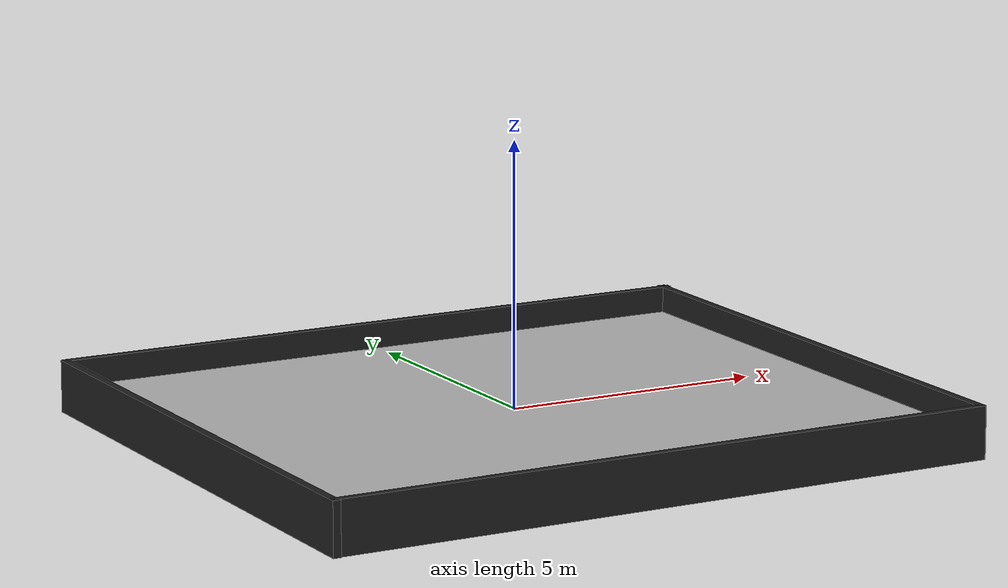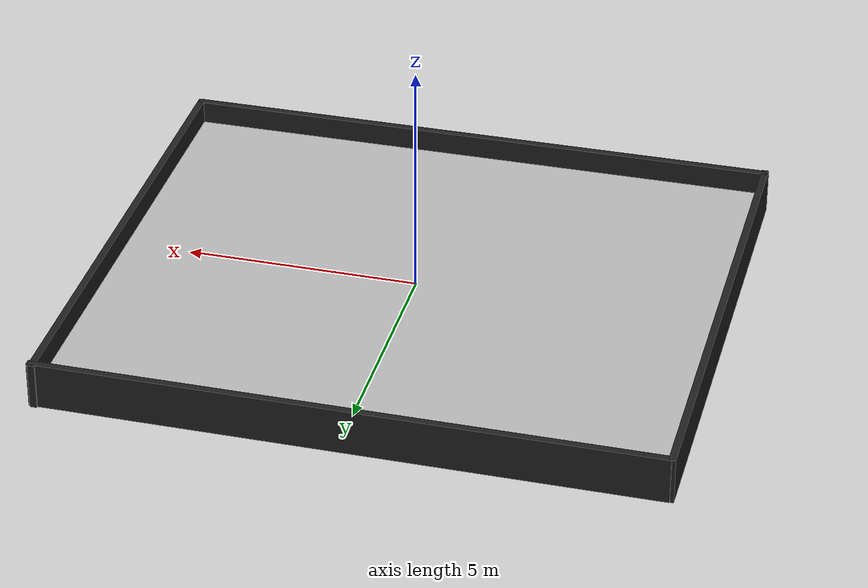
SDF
<sdf version="1.4">
 <world name="default">
  <scene><ambient>0.8 0.8 0.8 1</ambient><background>0.7 0.7 0.7 1</background><shadows>true</shadows></scene>
  <include><uri>model://sun</uri><pose>-2.0 2.0 2.0 0 0 0</pose></include>
  <include><uri>model://sala404_circuito/pisosala</uri><pose>0 0 0 0 0 -1.57</pose></include>
  <include><uri>model://base</uri><pose>0 4.5 0 0 0 0</pose></include>
  <include><uri>model://base</uri><pose>-6 0 0 0 0 0</pose></include>
  <include><uri>model://base</uri><pose>5.5 -3.5 0 0 0 0</pose></include>
  <include><uri>model://base</uri><pose>5.5 3.5 0 0 0 0</pose></include>
  <include><uri>model://base</uri><pose>6 0 0 0 0 0</pose></include>
  <include><uri>model://base</uri><pose>-5.5 3.5 0 0 0 0</pose></include>
  <include><uri>model://base</uri><pose>-3 -3 0 0 0 0</pose></include>
  <include><uri>model://base</uri><pose>0 -4.5 0 0 0 0</pose></include>
  <include><uri>model://base</uri><pose>-4.3 -2 0 0 0 0</pose></include>
  <include><uri>model://sala404_circuito/parede</uri></include>
  <physics type="ode">
   <real_time_update_rate>1000.0</real_time_update_rate>
   <max_step_size>0.001</max_step_size>
   <real_time_factor>1</real_time_factor>
   <ode>
    <solver>
     <type>quick</type>
     <iters>150</iters>
     <precon_iters>0</precon_iters>
     <sor>1.400000</sor>
     <use_dynamic_moi_rescaling>1</use_dynamic_moi_rescaling>
    </solver>
    <constraints>
     <cfm>0.00001</cfm>
     <erp>0.2</erp>
     <contact_max_correcting_vel>2000.000000</contact_max_correcting_vel>
     <contact_surface_layer>0.01000</contact_surface_layer>
    </constraints>
   </ode>
  </physics>
 </world>
</sdf>

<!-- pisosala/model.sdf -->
<sdf version="1.6">
  <model name="pisosala_forca">
    <static>true</static>
    <link name="course_link">
      <collision name="course_collision">
        <geometry>
          <plane>
            <normal>0 0 1</normal>
            <size>10 13</size>
          </plane>
        </geometry>
        <surface>
          <friction>
            <ode>
              <mu>100</mu>
              <mu2>50</mu2>
            </ode>
          </friction>
        </surface>
      </collision>
      <visual name="course_visual">
        <cast_shadows>false</cast_shadows>
        <geometry>
          <mesh>
            <uri>model://forca/pisosala/materials/scripts/piso.dae</uri>
            <scale>1 1 1</scale>
          </mesh>
        </geometry>
      </visual>
    </link>
  </model>
</sdf>

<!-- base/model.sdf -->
<sdf version='1.6'>
  <model name='base'>
    <link name='link_0'>
      <inertial>
        <mass>0.03</mass>
        <inertia>
          <ixx>0.004375</ixx>
          <ixy>0</ixy>
          <ixz>0</ixz>
          <iyy>0.004375</iyy>
          <iyz>0</iyz>
          <izz>0.00375</izz>
        </inertia>
        <pose frame=''>0 0 0 0 -0 0</pose>
      </inertial>
      <pose frame=''>0.003805 -0.001087 -0.087331 0 -0 0</pose>
      <gravity>1</gravity>
      <self_collide>0</self_collide>
      <kinematic>0</kinematic>
      <enable_wind>0</enable_wind>
      <visual name='visual'>
        <pose frame=''>0 0 0 0 -0 0</pose>
        <geometry>
          <cylinder>
            <radius>0.1</radius>
            <length>0.1</length>
          </cylinder>
        </geometry>
      </visual>
      <collision name='collision'>
        <laser_retro>0</laser_retro>
        <max_contacts>10</max_contacts>
        <pose frame=''>0 0 0 0 -0 0</pose>
        <geometry>
          <cylinder>
            <radius>0.1</radius>
            <length>0.1</length>
          </cylinder>
        </geometry>
        <surface>
          <friction>
            <ode>
              <mu>1</mu>
              <mu2>1</mu2>
              <fdir1>0 0 0</fdir1>
              <slip1>0</slip1>
              <slip2>0</slip2>
            </ode>
            <torsional>
              <coefficient>1</coefficient>
              <patch_radius>0</patch_radius>
              <surface_radius>0</surface_radius>
              <use_patch_radius>1</use_patch_radius>
              <ode>
                <slip>0</slip>
              </ode>
            </torsional>
          </friction>
          <bounce>
            <restitution_coefficient>0</restitution_coefficient>
            <threshold>1e+06</threshold>
          </bounce>
          <contact>
            <collide_without_contact>0</collide_without_contact>
            <collide_without_contact_bitmask>1</collide_without_contact_bitmask>
            <collide_bitmask>1</collide_bitmask>
            <ode>
              <soft_cfm>0</soft_cfm>
              <soft_erp>0.2</soft_erp>
              <kp>1e+13</kp>
              <kd>1</kd>
              <max_vel>0.01</max_vel>
              <min_depth>0</min_depth>
            </ode>
            <bullet>
              <split_impulse>1</split_impulse>
              <split_impulse_penetration_threshold>-0.01</split_impulse_penetration_threshold>
              <soft_cfm>0</soft_cfm>
              <soft_erp>0.2</soft_erp>
              <kp>1e+13</kp>
              <kd>1</kd>
            </bullet>
          </contact>
        </surface>
      </collision>
    </link>

</model>

</sdf>

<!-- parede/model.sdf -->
<sdf version='1.6'>
  <model name='parede'>
    <link name='Wall_0'>
      <pose frame=''>-0.004951 -5.56026 0 0 -0 0</pose>
      <self_collide>0</self_collide>
      <enable_wind>0</enable_wind>
      <kinematic>0</kinematic>
      <inertial>
        <inertia>
          <ixx>0</ixx>
          <ixy>0</ixy>
          <ixz>0</ixz>
          <iyy>0</iyy>
          <iyz>0</iyz>
          <izz>0</izz>
        </inertia>
        <mass>0</mass>
        <pose frame=''>0 0 0 0 -0 0</pose>
      </inertial>
      <gravity>1</gravity>
      <visual name='Wall_0_Visual'>
        <pose frame=''>0 0 0 0 -0 0</pose>
        <geometry>
          <box>
            <size>13.1161 0.15 1.0</size>
          </box>
        </geometry>
        <material>
          <script>
            <uri>file://media/materials/scripts/gazebo.material</uri>
            <name>Gazebo/Black</name>
          </script>
          <ambient>0 0 0 1</ambient>
          <shader type='vertex'>
            <normal_map>__default__</normal_map>
          </shader>
          <diffuse>0 0 0 1</diffuse>
          <specular>0 0 0 1</specular>
          <emissive>0 0 0 1</emissive>
        </material>
        <meta>
          <layer>0</layer>
        </meta>
        <transparency>0</transparency>
        <cast_shadows>1</cast_shadows>
      </visual>
      <collision name='Wall_0_Collision'>
        <laser_retro>0</laser_retro>
        <max_contacts>10</max_contacts>
        <pose frame=''>0 0 0 0 -0 0</pose>
        <geometry>
          <box>
            <size>13.1161 0.15 1.0</size>
          </box>
        </geometry>
        <surface>
          <friction>
            <ode>
              <mu>1</mu>
              <mu2>1</mu2>
              <fdir1>0 0 0</fdir1>
              <slip1>0</slip1>
              <slip2>0</slip2>
            </ode>
            <torsional>
              <coefficient>1</coefficient>
              <patch_radius>0</patch_radius>
              <surface_radius>0</surface_radius>
              <use_patch_radius>1</use_patch_radius>
              <ode>
                <slip>0</slip>
              </ode>
            </torsional>
          </friction>
          <bounce>
            <restitution_coefficient>0</restitution_coefficient>
            <threshold>1e+06</threshold>
          </bounce>
          <contact>
            <collide_without_contact>0</collide_without_contact>
            <collide_without_contact_bitmask>1</collide_without_contact_bitmask>
            <collide_bitmask>1</collide_bitmask>
            <ode>
              <soft_cfm>0</soft_cfm>
              <soft_erp>0.2</soft_erp>
              <kp>1e+13</kp>
              <kd>1</kd>
              <max_vel>0.01</max_vel>
              <min_depth>0</min_depth>
            </ode>
            <bullet>
              <split_impulse>1</split_impulse>
              <split_impulse_penetration_threshold>-0.01</split_impulse_penetration_threshold>
              <soft_cfm>0</soft_cfm>
              <soft_erp>0.2</soft_erp>
              <kp>1e+13</kp>
              <kd>1</kd>
            </bullet>
          </contact>
        </surface>
      </collision>
    </link>
    <link name='Wall_1'>
      <pose frame=''>0.061052 5.53717 0 0 -0 3.14</pose>
      <self_collide>0</self_collide>
      <enable_wind>0</enable_wind>
      <kinematic>0</kinematic>
      <inertial>
        <inertia>
          <ixx>0</ixx>
          <ixy>0</ixy>
          <ixz>0</ixz>
          <iyy>0</iyy>
          <iyz>0</iyz>
          <izz>0</izz>
        </inertia>
        <mass>0</mass>
        <pose frame=''>0 0 0 0 -0 0</pose>
      </inertial>
      <gravity>1</gravity>
      <visual name='Wall_1_Visual'>
        <pose frame=''>0 0 0 0 -0 0</pose>
        <geometry>
          <box>
            <size>13.1161 0.15 1.0</size>
          </box>
        </geometry>
        <material>
          <script>
            <uri>file://media/materials/scripts/gazebo.material</uri>
            <name>Gazebo/Black</name>
          </script>
          <ambient>0 0 0 1</ambient>
          <shader type='vertex'>
            <normal_map>__default__</normal_map>
          </shader>
          <diffuse>0 0 0 1</diffuse>
          <specular>0 0 0 1</specular>
          <emissive>0 0 0 1</emissive>
        </material>
        <meta>
          <layer>0</layer>
        </meta>
        <transparency>0</transparency>
        <cast_shadows>1</cast_shadows>
      </visual>
      <collision name='Wall_1_Collision'>
        <laser_retro>0</laser_retro>
        <max_contacts>10</max_contacts>
        <pose frame=''>0 0 0 0 -0 0</pose>
        <geometry>
          <box>
            <size>13.1161 0.15 1.0</size>
          </box>
        </geometry>
        <surface>
          <friction>
            <ode>
              <mu>1</mu>
              <mu2>1</mu2>
              <fdir1>0 0 0</fdir1>
              <slip1>0</slip1>
              <slip2>0</slip2>
            </ode>
            <torsional>
              <coefficient>1</coefficient>
              <patch_radius>0</patch_radius>
              <surface_radius>0</surface_radius>
              <use_patch_radius>1</use_patch_radius>
              <ode>
                <slip>0</slip>
              </ode>
            </torsional>
          </friction>
          <bounce>
            <restitution_coefficient>0</restitution_coefficient>
            <threshold>1e+06</threshold>
          </bounce>
          <contact>
            <collide_without_contact>0</collide_without_contact>
            <collide_without_contact_bitmask>1</collide_without_contact_bitmask>
            <collide_bitmask>1</collide_bitmask>
            <ode>
              <soft_cfm>0</soft_cfm>
              <soft_erp>0.2</soft_erp>
              <kp>1e+13</kp>
              <kd>1</kd>
              <max_vel>0.01</max_vel>
              <min_depth>0</min_depth>
            </ode>
            <bullet>
              <split_impulse>1</split_impulse>
              <split_impulse_penetration_threshold>-0.01</split_impulse_penetration_threshold>
              <soft_cfm>0</soft_cfm>
              <soft_erp>0.2</soft_erp>
              <kp>1e+13</kp>
              <kd>1</kd>
            </bullet>
          </contact>
        </surface>
      </collision>
    </link>
    <link name='Wall_2'>
      <pose frame=''>6.5 0.005899 0 0 -0 1.57</pose>
      <self_collide>0</self_collide>
      <enable_wind>0</enable_wind>
      <kinematic>0</kinematic>
      <inertial>
        <inertia>
          <ixx>0</ixx>
          <ixy>0</ixy>
          <ixz>0</ixz>
          <iyy>0</iyy>
          <iyz>0</iyz>
          <izz>0</izz>
        </inertia>
        <mass>0</mass>
        <pose frame=''>0 0 0 0 -0 0</pose>
      </inertial>
      <gravity>1</gravity>
      <visual name='Wall_2_Visual'>
        <pose frame=''>0 0 0 0 -0 0</pose>
        <geometry>
          <box>
            <size>11.2703 0.15 1.0</size>
          </box>
        </geometry>
        <material>
          <script>
            <uri>file://media/materials/scripts/gazebo.material</uri>
            <name>Gazebo/Black</name>
          </script>
          <ambient>0 0 0 1</ambient>
          <shader type='vertex'>
            <normal_map>__default__</normal_map>
          </shader>
          <diffuse>0 0 0 1</diffuse>
          <specular>0 0 0 1</specular>
          <emissive>0 0 0 1</emissive>
        </material>
        <meta>
          <layer>0</layer>
        </meta>
        <transparency>0</transparency>
        <cast_shadows>1</cast_shadows>
      </visual>
      <collision name='Wall_2_Collision'>
        <laser_retro>0</laser_retro>
        <max_contacts>10</max_contacts>
        <pose frame=''>0 0 0 0 -0 0</pose>
        <geometry>
          <box>
            <size>11.2703 0.15 1.0</size>
          </box>
        </geometry>
        <surface>
          <friction>
            <ode>
              <mu>1</mu>
              <mu2>1</mu2>
              <fdir1>0 0 0</fdir1>
              <slip1>0</slip1>
              <slip2>0</slip2>
            </ode>
            <torsional>
              <coefficient>1</coefficient>
              <patch_radius>0</patch_radius>
              <surface_radius>0</surface_radius>
              <use_patch_radius>1</use_patch_radius>
              <ode>
                <slip>0</slip>
              </ode>
            </torsional>
          </friction>
          <bounce>
            <restitution_coefficient>0</restitution_coefficient>
            <threshold>1e+06</threshold>
          </bounce>
          <contact>
            <collide_without_contact>0</collide_without_contact>
            <collide_without_contact_bitmask>1</collide_without_contact_bitmask>
            <collide_bitmask>1</collide_bitmask>
            <ode>
              <soft_cfm>0</soft_cfm>
              <soft_erp>0.2</soft_erp>
              <kp>1e+13</kp>
              <kd>1</kd>
              <max_vel>0.01</max_vel>
              <min_depth>0</min_depth>
            </ode>
            <bullet>
              <split_impulse>1</split_impulse>
              <split_impulse_penetration_threshold>-0.01</split_impulse_penetration_threshold>
              <soft_cfm>0</soft_cfm>
              <soft_erp>0.2</soft_erp>
              <kp>1e+13</kp>
              <kd>1</kd>
            </bullet>
          </contact>
        </surface>
      </collision>
    </link>
    <link name='Wall_3'>
      <pose frame=''>-6.49998 -0.025026 0 0 0 -1.57</pose>
      <self_collide>0</self_collide>
      <enable_wind>0</enable_wind>
      <kinematic>0</kinematic>
      <inertial>
        <inertia>
          <ixx>0</ixx>
          <ixy>0</ixy>
          <ixz>0</ixz>
          <iyy>0</iyy>
          <iyz>0</iyz>
          <izz>0</izz>
        </inertia>
        <mass>0</mass>
        <pose frame=''>0 0 0 0 -0 0</pose>
      </inertial>
      <gravity>1</gravity>
      <visual name='Wall_3_Visual'>
        <pose frame=''>0 0 0 0 -0 0</pose>
        <geometry>
          <box>
            <size>11.2703 0.15 1.0</size>
          </box>
        </geometry>
        <material>
          <script>
            <uri>file://media/materials/scripts/gazebo.material</uri>
            <name>Gazebo/Black</name>
          </script>
          <ambient>0 0 0 1</ambient>
          <shader type='vertex'>
            <normal_map>__default__</normal_map>
          </shader>
          <diffuse>0 0 0 1</diffuse>
          <specular>0 0 0 1</specular>
          <emissive>0 0 0 1</emissive>
        </material>
        <meta>
          <layer>0</layer>
        </meta>
        <transparency>0</transparency>
        <cast_shadows>1</cast_shadows>
      </visual>
      <collision name='Wall_3_Collision'>
        <laser_retro>0</laser_retro>
        <max_contacts>10</max_contacts>
        <pose frame=''>0 0 0 0 -0 0</pose>
        <geometry>
          <box>
            <size>11.2703 0.15 1.0</size>
          </box>
        </geometry>
        <surface>
          <friction>
            <ode>
              <mu>1</mu>
              <mu2>1</mu2>
              <fdir1>0 0 0</fdir1>
              <slip1>0</slip1>
              <slip2>0</slip2>
            </ode>
            <torsional>
              <coefficient>1</coefficient>
              <patch_radius>0</patch_radius>
              <surface_radius>0</surface_radius>
              <use_patch_radius>1</use_patch_radius>
              <ode>
                <slip>0</slip>
              </ode>
            </torsional>
          </friction>
          <bounce>
            <restitution_coefficient>0</restitution_coefficient>
            <threshold>1e+06</threshold>
          </bounce>
          <contact>
            <collide_without_contact>0</collide_without_contact>
            <collide_without_contact_bitmask>1</collide_without_contact_bitmask>
            <collide_bitmask>1</collide_bitmask>
            <ode>
              <soft_cfm>0</soft_cfm>
              <soft_erp>0.2</soft_erp>
              <kp>1e+13</kp>
              <kd>1</kd>
              <max_vel>0.01</max_vel>
              <min_depth>0</min_depth>
            </ode>
            <bullet>
              <split_impulse>1</split_impulse>
              <split_impulse_penetration_threshold>-0.01</split_impulse_penetration_threshold>
              <soft_cfm>0</soft_cfm>
              <soft_erp>0.2</soft_erp>
              <kp>1e+13</kp>
              <kd>1</kd>
            </bullet>
          </contact>
        </surface>
      </collision>
    </link>
    <static>1</static>
    <allow_auto_disable>1</allow_auto_disable>
  </model>
</sdf>
